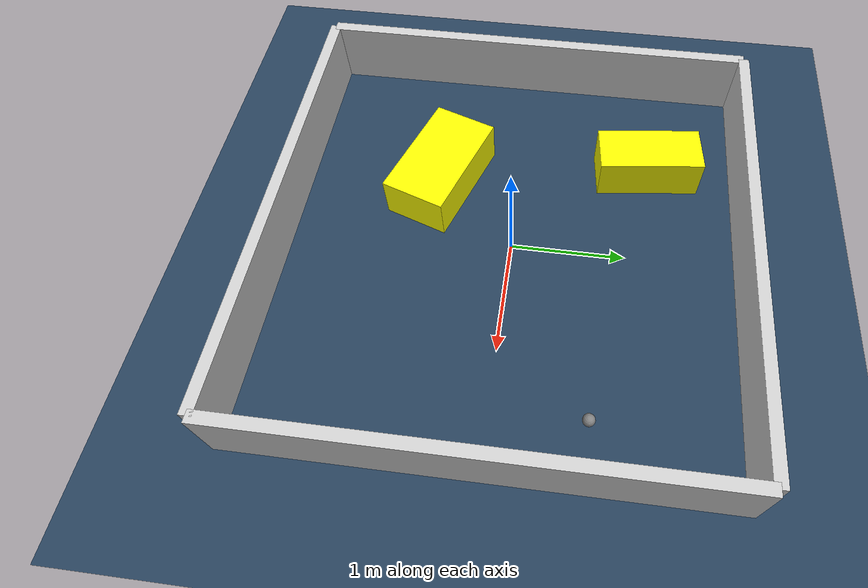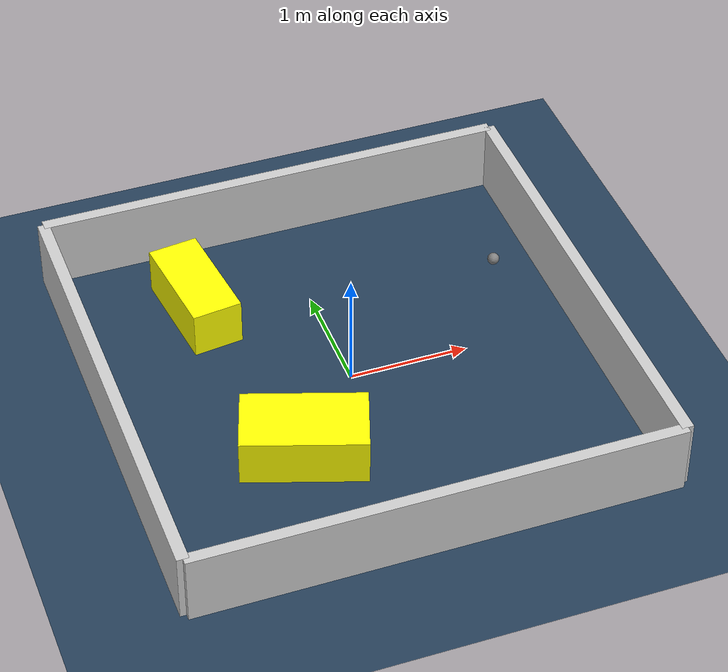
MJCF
<?xml version="1.0" ?>
<mujoco model="generated_environment">
  <option timestep="0.01" integrator="RK4" cone="elliptic"/>
  <default>
    <geom density="1"/>
  </default>
  <asset>
    <texture builtin="gradient" height="3072" rgb1="0.3 0.5 0.7" rgb2="0 0 0" type="skybox" width="512"/>
    <texture builtin="checker" height="300" mark="edge" markrgb="0.8 0.8 0.8" name="groundplane" rgb1="0.2 0.3 0.4" rgb2="0.1 0.2 0.3" type="2d" width="300"/>
    <material name="groundplane" reflectance="0.2" texrepeat="5 5" texture="groundplane" texuniform="true"/>
    <material name="robot" rgba="0.0 1.0 0.0 1"/>
  </asset>
  <worldbody>
    <light dir="0 0 -1" directional="true" pos="0 0 1.5"/>
    <geom condim="4" friction="1.0 0.005 0.001" material="groundplane" name="floor" size="0 0 0.05" type="plane"/>
    <body name="walls">
      <geom name="wall_1" condim="4" pos="-2.0 0.0 0.3" rgba="0.800000011920929 0.800000011920929 0.800000011920929 1.0" size="0.05 2.0 0.3" type="box"/>
      <geom name="wall_2" condim="4" pos="2.0 0.0 0.3" rgba="0.800000011920929 0.800000011920929 0.800000011920929 1.0" size="0.05 2.0 0.3" type="box"/>
      <geom name="wall_3" condim="4" pos="0.0 -2.0 0.3" rgba="0.800000011920929 0.800000011920929 0.800000011920929 1.0" size="2.0 0.05 0.3" type="box"/>
      <geom name="wall_4" condim="4" pos="0.0 2.0 0.3" rgba="0.800000011920929 0.800000011920929 0.800000011920929 1.0" size="2.0 0.05 0.3" type="box"/>
    </body>
    <body name="robot">
      <joint name="joint_x" type="slide" pos="0 0 0" axis="1 0 0"/>
      <joint name="joint_y" type="slide" pos="0 0 0" axis="0 1 0"/>
      <geom name="robot" type="sphere" pos="1.5553184760851244 0.7672581281294684 0.2" size="0.05" mass="5." friction="1.0 0.005 0.0001" condim="4"/>
      <site name="sensor_ball"/>
    </body>
    <body name="obstacle_1_movable">
      <geom name="obstacle_1_movable" condim="4" pos="-0.951481786542346 1.1596194987164363 0.2" euler="0 0 186.69876131278676" friction="1.0 0.005 0.001" rgba="1 1 0 1" size="0.21107028590382426 0.4631939943640283 0.2" type="box" mass="0.1"/>
      <joint type="free"/>
    </body>
    <body name="obstacle_2_movable">
      <geom name="obstacle_2_movable" condim="4" pos="-0.6461312289691632 -0.7297235552087629 0.2" euler="0 0 341.0955299694061" friction="1.0 0.005 0.001" rgba="1 1 0 1" size="0.506413191137076 0.29111612745123294 0.2" type="box" mass="0.1"/>
      <joint type="free"/>
    </body>
  </worldbody>
  <actuator>
    <motor name="actuator_x" joint="joint_x" gear="1" ctrlrange="-1 1"/>
    <motor name="actuator_y" joint="joint_y" gear="1" ctrlrange="-1 1"/>
  </actuator>
</mujoco>
